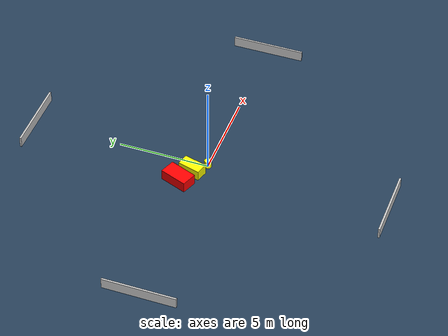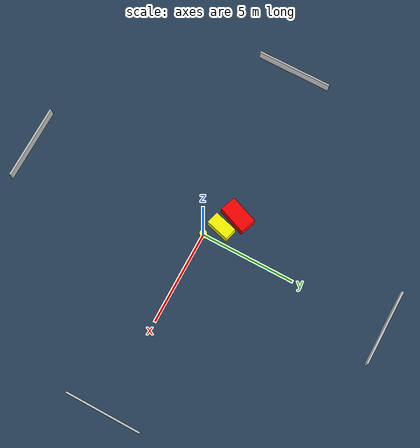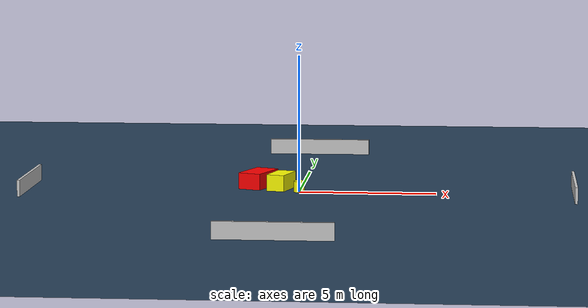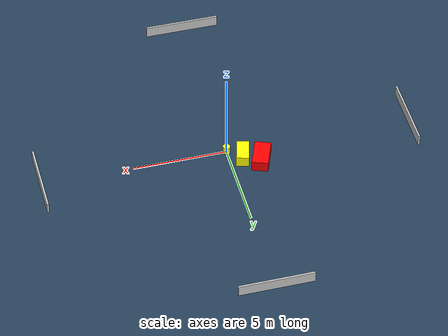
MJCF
<?xml version="1.0" ?>
<mujoco model="generated_environment">
  <option timestep="0.01" integrator="RK4" cone="elliptic"/>
  <default>
    <geom density="1"/>
  </default>
  <asset>
    <texture builtin="gradient" height="3072" name="skybox" rgb1="0.3 0.5 0.7" rgb2="0 0 0" type="skybox" width="512"/>
    <texture builtin="checker" height="300" name="groundplane" rgb1="0.2 0.3 0.4" rgb2="0.1 0.2 0.3" type="2d" width="300"/>
    <material name="groundplane" reflectance="0.2" texrepeat="5 5" texture="groundplane"/>
  </asset>
  <worldbody>
    <light dir="0 0 -1" directional="true" pos="0 0 1.5"/>
    <geom condim="3" friction="0.5 0.005 0.001" material="groundplane" name="floor" pos="0 0 0" size="0 0 0.05" type="plane"/>
    <body name="walls">
      <geom name="wall_1" condim="4" pos="-10.0 0.0 0.3" rgba="0.800000011920929 0.800000011920929 0.800000011920929 1.0" size="0.05 2.0 0.3" type="box"/>
      <geom name="wall_2" condim="4" pos="10.0 0.0 0.3" rgba="0.800000011920929 0.800000011920929 0.800000011920929 1.0" size="0.05 2.0 0.3" type="box"/>
      <geom name="wall_3" condim="4" pos="0.0 -10.0 0.3" rgba="0.800000011920929 0.800000011920929 0.800000011920929 1.0" size="2.0 0.05 0.3" type="box"/>
      <geom name="wall_4" condim="4" pos="0.0 10.0 0.3" rgba="0.800000011920929 0.800000011920929 0.800000011920929 1.0" size="2.0 0.05 0.3" type="box"/>
    </body>
    <body name="robot">
      <joint name="joint_x" type="slide" pos="0 0 0" axis="1 0 0"/>
      <joint name="joint_y" type="slide" pos="0 0 0" axis="0 1 0"/>
      <geom name="robot" type="cylinder" pos="0.0 0.0 0.2" size="0.2 0.2 0.0" mass="5.0" friction="1.0 0.005 0.0001" condim="4" rgba="1.0 1.0 0.0 1.0"/>
    </body>
    <body name="obstacle_1_movable">
      <geom name="obstacle_1_movable" condim="4" pos="-0.7215764828367061 0.6366351830885769 0.3" euler="0 0 254.71021608490304" friction="0.0 0.005 0.001" rgba="1.0 1.0 0.0 1.0" size="0.6305119055656592 0.33683922486777484 0.3" type="box" mass="0.1"/>
      <joint type="free"/>
    </body>
    <body name="obstacle_2_static">
      <geom name="obstacle_2_static" condim="4" pos="-1.6119379718141416 1.0900712349945185 0.3" euler="0 0 69.19873427121004" friction="0.0 0.005 0.001" rgba="1.0 0.0 0.0 1.0" size="0.7797205882336842 0.43454807446737653 0.3" type="box"/>
    </body>
  </worldbody>
  <actuator>
    <motor name="actuator_x" joint="joint_x" gear="1" ctrlrange="-1 1"/>
    <motor name="actuator_y" joint="joint_y" gear="1" ctrlrange="-1 1"/>
  </actuator>
</mujoco>
